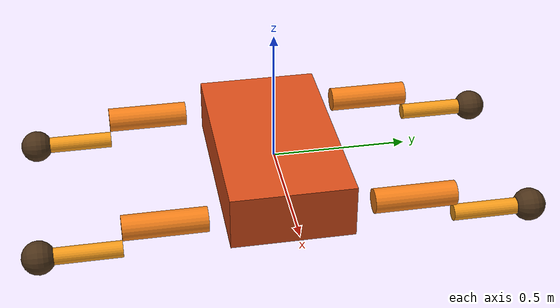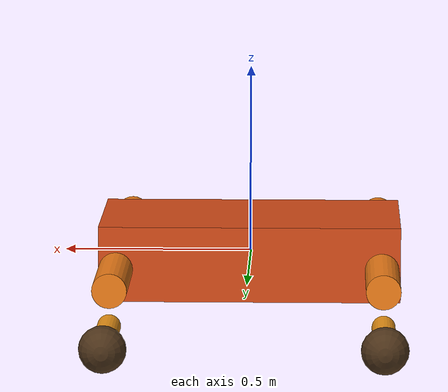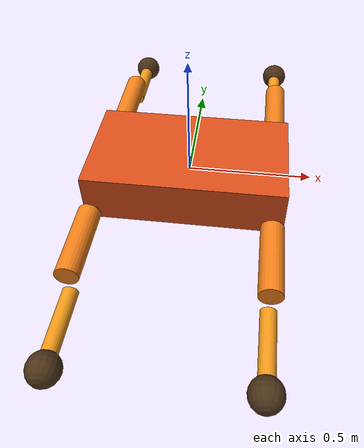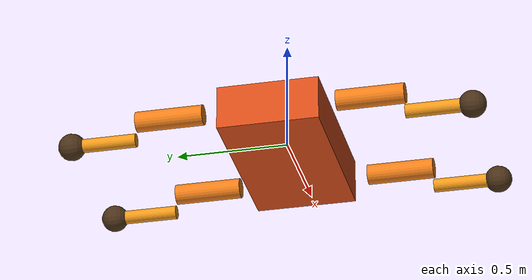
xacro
<?xml version="1.0" encoding="utf-8"  ?>
<robot name="quad_simple" xmlns:xacro="http://www.ros.org/wiki/xacro">

    <xacro:include filename="$(find adarl_envs)/models/commons.xacro"/>
    <xacro:include filename="$(find adarl_envs)/models/leg_simple.xacro"/>

	<xacro:arg name="hip_out_offset" default="0.07" />
	<xacro:arg name="front_legs_pos" default="0.35" />
	<xacro:arg name="back_legs_pos" default="-0.35" />

	<xacro:arg name="thigh_width" default="0.09" />
	<xacro:arg name="thigh_height" default="0.3" />
	<xacro:arg name="thigh_mass" default="2" />
	<xacro:arg name="thigh_color" default="1 0.5088 0.0468 1" />

	<xacro:arg name="knee_y_offset" default="-0.09" /> <!-- Wide enough to prevent self collisions (should be more than shin_width/2 + thigh_width/2) -->

	<xacro:arg name="shin_width" default="0.06" />
	<xacro:arg name="shin_height" default="0.35" />
	<xacro:arg name="shin_mass" default="1" />
	<xacro:arg name="shin_color" default="1 0.5088 0.0468 1" />

	<xacro:arg name="body_width" default="0.45" />
	<xacro:arg name="body_length" default="0.8" />
	<xacro:arg name="body_height" default="0.20" />
	<xacro:arg name="body_mass" default="12" />

	<xacro:arg name="hip_friction" default="0.1" />
	<xacro:arg name="knee_friction" default="0.1" />

	<xacro:arg name="use_cylinders" default="True" />

    <xacro:arg name="all_collisions" default="True" />

	<xacro:property name="legs_out_offset"  default="$(arg hip_out_offset)" />
	<xacro:property name="front_legs_pos"  default="$(arg front_legs_pos)" />
	<xacro:property name="back_legs_pos"  default="$(arg back_legs_pos)" />

	<xacro:property name="thigh_width"  default="$(arg thigh_width)" />
	<xacro:property name="thigh_height" default="$(arg thigh_height)" />
	<xacro:property name="thigh_mass"   default="$(arg thigh_mass)" />
	<xacro:property name="thigh_color"  default="$(arg thigh_color)" />

	<xacro:property name="knee_y_offset"  default="$(arg knee_y_offset)" />

	<xacro:property name="shin_width"  default="$(arg shin_width)" />
	<xacro:property name="shin_height" default="$(arg shin_height)" />
	<xacro:property name="shin_mass"   default="$(arg shin_mass)" />
	<xacro:property name="shin_color"  default="$(arg shin_color)" />

	<xacro:property name="body_width" default="$(arg body_width)" />
	<xacro:property name="body_length" default="$(arg body_length)" />
	<xacro:property name="body_height" default="$(arg body_height)" />
	<xacro:property name="body_mass" default="$(arg body_mass)" />

	<xacro:property name="knee_friction" default="$(arg knee_friction)" />
	<xacro:property name="hip_friction" default="$(arg hip_friction)" />

	<xacro:property name="use_cylinders" default="$(arg use_cylinders)" />
	<xacro:arg name="enable_body_collisions" default="$(arg all_collisions)" />
	<xacro:arg name="enable_thigh_collisions" default="$(arg all_collisions)" />
	<xacro:arg name="enable_shin_collisions" default="$(arg all_collisions)" />
	<xacro:property name="enable_body_collisions" default="$(arg enable_body_collisions)" />
	<xacro:property name="enable_thigh_collisions" default="$(arg enable_thigh_collisions)" />
	<xacro:property name="enable_shin_collisions" default="$(arg enable_shin_collisions)" />

    <xacro:property name="hip_x_min_pos" default="-2.4" />
    <xacro:property name="hip_x_max_pos" default="0.0" />
    <xacro:property name="hip_y_min_pos" default="-2.4" />
    <xacro:property name="hip_y_max_pos" default="2.4" />
    <xacro:property name="knee_min_pos" default="-2.4" />
    <xacro:property name="knee_max_pos" default="2.4" />

    <xacro:macro name="default_contact_params" params="">
        <contact>
            <lateral_friction value="1"/>
            <rolling_friction value="0.00001"/>
        </contact>
    </xacro:macro>

    <link name="body_link">
		<visual name = "body_link_v">
			<origin xyz="0 0 0" rpy="0 0 0"/>
			<geometry>
				<box size="${body_length} ${body_width} ${body_height}"/>
			</geometry>
            <material name="light_orange">
                <color rgba="0.85 0.30 0.1 1.0"/>
            </material>
	   	</visual>
        <xacro:if value="${enable_body_collisions}">
            <collision name = "body_link_c">
                <origin xyz="0 0 0" rpy="0 0 0"/>
                <geometry>
                    <box size="${body_length} ${body_width} ${body_height}"/>
                </geometry>
            </collision>
		</xacro:if>
		<xacro:box_inertial mass="${body_mass}"
                            x="${body_length}" y="${body_width}" z="${body_height}"
                            pose_xyz = "0 0 0"
                            pose_rpy = "0 0 0"/>
        <xacro:default_contact_params />
	</link>

    <xacro:leg_simple   hip_x_offset = "${front_legs_pos}"
                        hip_y_offset = "${body_width/2 + legs_out_offset}"
                        hip_z_offset = "0"
                        thigh_width  = "${thigh_width}"
                        thigh_height = "${thigh_height}"
                        thigh_mass = "${thigh_mass}"
                        thigh_color = "${thigh_color}"
                        knee_y_offset = "${knee_y_offset}"
                        shin_width = "${shin_width}"
                        shin_height = "${shin_height}"
                        shin_mass = "${shin_mass}"
                        shin_color = "${shin_color}"
                        hip_friction = "${hip_friction}"
                        knee_friction = "${knee_friction}"
                        parent_link = "body_link"
                        leg_name = "front_left"
                        is_left_leg = "true"
                        hip_x_min_pos = "${hip_x_min_pos}"
                        hip_x_max_pos = "${hip_x_max_pos}"
                        hip_y_min_pos = "${hip_y_min_pos}"
                        hip_y_max_pos = "${hip_y_max_pos}"
                        knee_min_pos = "${knee_min_pos}"
                        knee_max_pos = "${knee_max_pos}"
                        use_cylinders = "${use_cylinders}"
                        enable_thigh_collisions = "${enable_thigh_collisions}"
                        enable_shin_collisions = "${enable_shin_collisions}"
                        />

    <xacro:leg_simple   hip_x_offset = "${front_legs_pos}"
                        hip_y_offset = "${body_width/2 + legs_out_offset}"
                        hip_z_offset = "0"
                        thigh_width  = "${thigh_width}"
                        thigh_height = "${thigh_height}"
                        thigh_mass = "${thigh_mass}"
                        thigh_color = "${thigh_color}"
                        knee_y_offset = "${knee_y_offset}"
                        shin_width = "${shin_width}"
                        shin_height = "${shin_height}"
                        shin_mass = "${shin_mass}"
                        shin_color = "${shin_color}"
                        hip_friction = "${hip_friction}"
                        knee_friction = "${knee_friction}"
                        parent_link = "body_link"
                        leg_name = "front_right"
                        is_left_leg = "false"
                        hip_x_min_pos = "${hip_x_min_pos}"
                        hip_x_max_pos = "${hip_x_max_pos}"
                        hip_y_min_pos = "${hip_y_min_pos}"
                        hip_y_max_pos = "${hip_y_max_pos}"
                        knee_min_pos = "${knee_min_pos}"
                        knee_max_pos = "${knee_max_pos}"
                        use_cylinders = "${use_cylinders}"
                        enable_thigh_collisions = "${enable_thigh_collisions}"
                        enable_shin_collisions = "${enable_shin_collisions}"
                        />

    <xacro:leg_simple   hip_x_offset = "${back_legs_pos}"
                        hip_y_offset = "${body_width/2 + legs_out_offset}"
                        hip_z_offset = "0"
                        thigh_width  = "${thigh_width}"
                        thigh_height = "${thigh_height}"
                        thigh_mass = "${thigh_mass}"
                        thigh_color = "${thigh_color}"
                        knee_y_offset = "${knee_y_offset}"
                        shin_width = "${shin_width}"
                        shin_height = "${shin_height}"
                        shin_mass = "${shin_mass}"
                        shin_color = "${shin_color}"
                        hip_friction = "${hip_friction}"
                        knee_friction = "${knee_friction}"
                        parent_link = "body_link"
                        leg_name = "back_left"
                        is_left_leg = "true"
                        hip_x_min_pos = "${hip_x_min_pos}"
                        hip_x_max_pos = "${hip_x_max_pos}"
                        hip_y_min_pos = "${hip_y_min_pos}"
                        hip_y_max_pos = "${hip_y_max_pos}"
                        knee_min_pos = "${knee_min_pos}"
                        knee_max_pos = "${knee_max_pos}"
                        use_cylinders = "${use_cylinders}"
                        enable_thigh_collisions = "${enable_thigh_collisions}"
                        enable_shin_collisions = "${enable_shin_collisions}"
                        />

    <xacro:leg_simple   hip_x_offset = "${back_legs_pos}"
                        hip_y_offset = "${body_width/2 + legs_out_offset}"
                        hip_z_offset = "0"
                        thigh_width  = "${thigh_width}"
                        thigh_height = "${thigh_height}"
                        thigh_mass = "${thigh_mass}"
                        thigh_color = "${thigh_color}"
                        knee_y_offset = "${knee_y_offset}"
                        shin_width = "${shin_width}"
                        shin_height = "${shin_height}"
                        shin_mass = "${shin_mass}"
                        shin_color = "${shin_color}"
                        hip_friction = "${hip_friction}"
                        knee_friction = "${knee_friction}"
                        parent_link = "body_link"
                        leg_name = "back_right"
                        is_left_leg = "false"
                        hip_x_min_pos = "${hip_x_min_pos}"
                        hip_x_max_pos = "${hip_x_max_pos}"
                        hip_y_min_pos = "${hip_y_min_pos}"
                        hip_y_max_pos = "${hip_y_max_pos}"
                        knee_min_pos = "${knee_min_pos}"
                        knee_max_pos = "${knee_max_pos}"
                        use_cylinders = "${use_cylinders}"
                        enable_thigh_collisions = "${enable_thigh_collisions}"
                        enable_shin_collisions = "${enable_shin_collisions}"
                        />

    <link name="world"/>
	<joint name="world_to_body" type="floating">
        <parent link="world"/>
        <child link="body_link"/>
    </joint>

</robot>

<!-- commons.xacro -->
<robot xmlns:xacro="http://www.ros.org/wiki/xacro">

	<xacro:macro name="box_inertial" params="mass x y z pose_xyz pose_rpy">
		<inertial>
			<origin xyz="${pose_xyz}" rpy="${pose_rpy}"/>
			<mass value="${mass}" />
			<inertia 	ixx="${0.083 * mass * (y*y + z*z)}" ixy="0.0" ixz="0.0"
						iyy="${0.083 * mass * (x*x + z*z)}" iyz="0.0"
						izz="${0.083 * mass * (x*x + y*y)}"/>
		</inertial>
	</xacro:macro>

    <xacro:macro name="small_inertial" params="">
		<xacro:box_inertial mass="0.0001"
                            x="0.001" y="0.001" z="0.001"
                            pose_xyz = "0 0 0"
                            pose_rpy = "0 0 0"/>
    </xacro:macro>

    <xacro:macro name="cylinder_z_inertial" params="mass height radius pose_xyz pose_rpy">
		<inertial>
			<origin xyz="${pose_xyz}" rpy="${pose_rpy}"/>
			<mass value="${mass}" />
            <inertia    ixx="${1/12.0 * mass * (3*radius*radius + height*height)}" ixy="0.0"  ixz="0.0"
                        iyy="${1/12.0 * mass * (3*radius*radius + height*height)}" iyz="0.0"
                        izz="${1/12.0 * mass * radius*radius}" />
		</inertial>
    </xacro:macro>

</robot>

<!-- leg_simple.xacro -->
<robot xmlns:xacro="http://www.ros.org/wiki/xacro">

    <xacro:macro name="leg_contact_params" params="">
        <contact>
            <lateral_friction value="1"/>
            <rolling_friction value="0.00001"/>
        </contact>
    </xacro:macro>

	<xacro:macro name="bar" params="use_cylinder
									length
									thickness">
        <xacro:if value="${use_cylinder}">
			<geometry>
				<cylinder length="${length}" radius="${thickness/2}" />
			</geometry>
		</xacro:if>
		<xacro:unless value="${use_cylinder}">
			<geometry>
				<box size="${thickness} ${thickness} ${length}" />
			</geometry>
		</xacro:unless>
    </xacro:macro>

	<xacro:macro name="leg_simple" params="hip_x_offset
											hip_y_offset
											hip_z_offset
											thigh_width
											thigh_height
											thigh_mass
											thigh_color
											knee_y_offset
											shin_width
											shin_height
											shin_mass
											shin_color
											hip_friction
											knee_friction
											parent_link
											leg_name
											is_left_leg:=true
											hip_x_min_pos:=-2.4
											hip_x_max_pos:=2.4
											hip_y_min_pos:=-2.4
											hip_y_max_pos:=2.4
											knee_min_pos:=-2.4
											knee_max_pos:=2.4
											use_cylinders:=true
											enable_thigh_collisions:=true
											enable_shin_collisions:=true">

			<xacro:if value="${is_left_leg}">
				<xacro:property name="exterior_y_direction" value="1"/>
			</xacro:if>
			<xacro:unless value="${is_left_leg}">
				<xacro:property name="exterior_y_direction" value="-1"/>
			</xacro:unless>

			<link name="prethigh_link_${leg_name}">
				<xacro:small_inertial/>
			</link>
			<link name="thigh_link_${leg_name}">
				<visual name = "thigh_link_v_${leg_name}">
					<origin xyz="0 0 -${thigh_height/2}" rpy="0 0 0"/>
					<xacro:bar length="${thigh_height}" thickness="${thigh_width}" use_cylinder="${use_cylinders}"/>
					<material name="DarkOrange">
						<color rgba="0.95 0.50 0.1 1.0"/>
					</material>
				</visual>
        		<xacro:if value="${enable_thigh_collisions}">
					<collision name = "thigh_link_c_${leg_name}">
						<origin xyz="0 0 -${thigh_height/2}" rpy="0 0 0"/>
						<xacro:bar length="${thigh_height}" thickness="${thigh_width}" use_cylinder="${use_cylinders}"/>
					</collision>
				</xacro:if>
				<xacro:small_inertial />
		        <xacro:leg_contact_params />
			</link>
			<link name="thigh_link_com_${leg_name}">
				<xacro:cylinder_z_inertial mass="${thigh_mass}" height="${thigh_height}" radius="${thigh_width/2}"
											pose_xyz="0 0 0" pose_rpy="0 0 0"/>
			</link>

			<gazebo reference="thigh_link_${leg_name}">
				<visual name="thigh_link_v_${leg_name}">
					<material>
						<ambient>$(arg thigh_color)</ambient>
						<diffuse>$(arg thigh_color)</diffuse>
					</material>
				</visual>
				<contact>
					<lateral_friction value="0.1"/>
					<rolling_friction value="0.01"/>
					<restitution value="0.05"/>
				</contact>
			</gazebo>

			<link name="shin_link_${leg_name}">
				<!-- shin_height is the knee to foot tip distance, so the actual shin lenght is determined accordingly-->
				<visual name = "shin_link_v_${leg_name}">
					<origin xyz="0 0 -${(shin_height-shin_width)/2}" rpy="0 0 0"/>
					<xacro:bar length="${shin_height-shin_width}" thickness="${shin_width}" use_cylinder="${use_cylinders}"/>
					<material name="orange">
						<color rgba="0.95 0.60 0.1 1.0"/>
					</material>
				</visual>
        		<xacro:if value="${enable_shin_collisions}">
					<collision name = "shin_link_c_${leg_name}">
						<origin xyz="0 0 -${(shin_height-shin_width)/2}" rpy="0 0 0"/>
						<xacro:bar length="${shin_height-shin_width}" thickness="${shin_width}" use_cylinder="${use_cylinders}"/>
					</collision>
				</xacro:if>
				<xacro:small_inertial />
		        <xacro:leg_contact_params />
			</link>
			<link name="shin_link_com_${leg_name}">
				<xacro:cylinder_z_inertial mass="${shin_mass}" height="${shin_height}" radius="${shin_width/2}"
											pose_xyz="0 0 -${shin_height/2}" pose_rpy="0 0 0"/>
			</link>
			<gazebo reference="shin_link_${leg_name}">
				<visual name="shin_link_v_${leg_name}">
					<material>
						<ambient>$(arg shin_color)</ambient>
						<diffuse>$(arg shin_color)</diffuse>
					</material>
				</visual>
			</gazebo>

			<link name="foot_center_link_${leg_name}">
				<visual>
					<origin xyz="0 0 0" rpy="0 0 0"/>
					<geometry>
						<sphere radius="${shin_width}" />
					</geometry>
					<material name="grey">
						<color rgba="0.3 0.2 0.1 1.0"/>
					</material>
				</visual>
				<collision>
					<origin xyz="0 0 0" rpy="0 0 0"/>
					<geometry>
						<sphere radius="${shin_width}" />
					</geometry>
				</collision>
				<xacro:small_inertial />
				<contact>
					<lateral_friction value="0.9"/>
					<rolling_friction value="0.01"/>
					<restitution value="0.05"/>
				</contact>
			</link>

			<link name="foot_link_${leg_name}">
				<xacro:small_inertial />
			</link>

			<joint name="hip_joint_y_${leg_name}" type="revolute">
				<parent link="${parent_link}"/>
				<child link="prethigh_link_${leg_name}"/>
				<origin xyz="${hip_x_offset} ${exterior_y_direction*hip_y_offset} ${hip_z_offset}" rpy="0 0 0"/>
				<dynamics damping="0.0" friction="${hip_friction}"/>
				<limit lower="${hip_y_min_pos}" upper="${hip_y_max_pos}" effort="112" velocity="20"/>
				<axis xyz="0 1 0"/>
			</joint>
			<joint name="hip_joint_x_${leg_name}" type="revolute">
				<parent link="prethigh_link_${leg_name}"/>
				<child link="thigh_link_${leg_name}"/>
				<origin xyz="0 0 0" rpy="${exterior_y_direction*3.14159/2} 0 0"/>
				<dynamics damping="0.0" friction="${hip_friction}"/>
				<limit lower="${hip_x_min_pos}" upper="${hip_x_max_pos}" effort="112" velocity="20"/>
				<axis xyz="${exterior_y_direction} 0 0"/>
			</joint>
			<joint name="thigh_link_com_${leg_name}" type="fixed">
				<parent link="thigh_link_${leg_name}"/>
				<child link="thigh_link_com_${leg_name}"/>
				<origin xyz="0 0 -${thigh_height/2}" rpy="0 0 0"/>
			</joint>

			<joint name="knee_joint_${leg_name}" type="revolute">
				<parent link="thigh_link_${leg_name}"/>
				<child link="shin_link_${leg_name}"/>
				<origin xyz="0 ${exterior_y_direction*knee_y_offset} -${thigh_height}" rpy="0 0 0"/>
				<dynamics damping="0.0" friction="${knee_friction}"/>
				<limit lower="${knee_min_pos}" upper="${knee_max_pos}" effort="112" velocity="20"/>
				<axis xyz="0 -1 0"/>
			</joint>
			<joint name="shin_link_com_${leg_name}" type="fixed">
				<parent link="shin_link_${leg_name}"/>
				<child link="shin_link_com_${leg_name}"/>
				<origin xyz="0 0 -${shin_height/2}" rpy="0 0 0"/>
			</joint>

			<joint name="foot_center_joint_${leg_name}" type="fixed">
				<parent link="shin_link_${leg_name}"/>
				<child link="foot_center_link_${leg_name}"/>
				<origin xyz="0 0 -${shin_height-shin_width}" rpy="0 0 0"/>
			</joint>

			<joint name="foot_joint_${leg_name}" type="fixed">
				<parent link="shin_link_${leg_name}"/>
				<child link="foot_link_${leg_name}"/>
				<origin xyz="0 0 -${shin_height}" rpy="0 0 0"/>
			</joint>
    </xacro:macro>

</robot>
